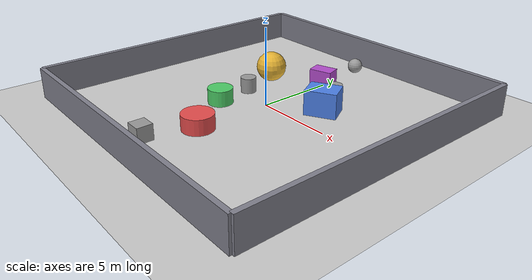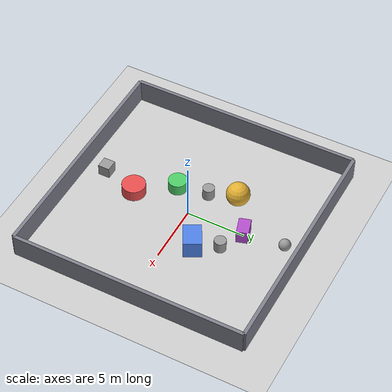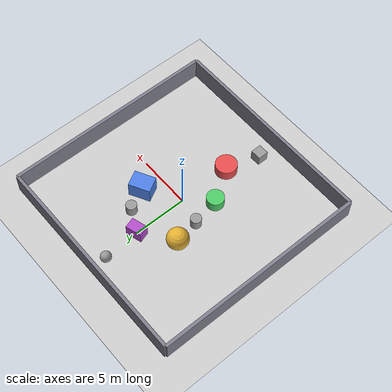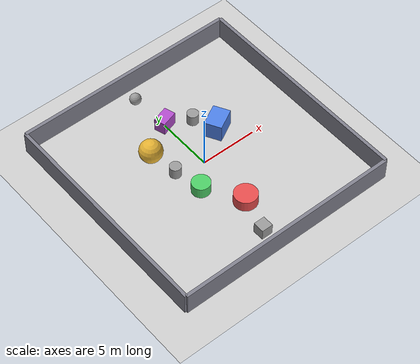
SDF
<sdf version="1.7">
 <world name="obstacle_world_small">
  <light name="sun" type="directional">
   <pose>0 0 20 0 -0 0</pose>
   <diffuse>0.9 0.9 0.9 1</diffuse>
   <specular>0.3 0.3 0.3 1</specular>
   <attenuation>
    <range>1500</range>
    <constant>0.9</constant>
    <linear>0.005</linear>
    <quadratic>0.001</quadratic>
   </attenuation>
   <direction>-0.5 -0.5 -1</direction>
   <spot><inner_angle>0</inner_angle><outer_angle>0</outer_angle><falloff>0</falloff></spot>
  </light>
  <physics type="ode">
   <max_step_size>0.001</max_step_size>
   <real_time_factor>1</real_time_factor>
   <real_time_update_rate>1000</real_time_update_rate>
   <ode>
    <solver>
     <type>quick</type>
     <iters>50</iters>
     <sor>1.3</sor>
     <use_dynamic_moi_rescaling>0</use_dynamic_moi_rescaling>
    </solver>
    <constraints>
     <cfm>0</cfm>
     <erp>0.2</erp>
     <contact_max_correcting_vel>100</contact_max_correcting_vel>
     <contact_surface_layer>0.001</contact_surface_layer>
    </constraints>
   </ode>
  </physics>
  <scene><ambient>0.5 0.5 0.5 1</ambient><background>0.8 0.8 0.85 1</background><shadows>1</shadows></scene>
  <model name="ground_plane">
   <static>1</static>
   <link name="link">
    <collision name="collision">
     <geometry><plane><normal>0 0 1</normal><size>20 20</size></plane></geometry>
     <surface><friction><ode><mu>100</mu><mu2>50</mu2></ode></friction></surface>
    </collision>
    <visual name="visual">
     <geometry><plane><normal>0 0 1</normal><size>20 20</size></plane></geometry>
     <material>
      <ambient>0.7 0.7 0.7 1</ambient>
      <diffuse>0.8 0.8 0.8 1</diffuse>
      <specular>0.1 0.1 0.1 1</specular>
     </material>
    </visual>
   </link>
  </model>
  <model name="wall_north">
   <static>1</static>
   <pose>0 10 1 0 -0 0</pose>
   <link name="link">
    <collision name="collision"><geometry><box><size>20 0.3 2</size></box></geometry></collision>
    <visual name="visual">
     <geometry><box><size>20 0.3 2</size></box></geometry>
     <material><ambient>0.4 0.4 0.45 1</ambient><diffuse>0.5 0.5 0.55 1</diffuse></material>
    </visual>
   </link>
  </model>
  <model name="wall_south">
   <static>1</static>
   <pose>0 -10 1 0 -0 0</pose>
   <link name="link">
    <collision name="collision"><geometry><box><size>20 0.3 2</size></box></geometry></collision>
    <visual name="visual">
     <geometry><box><size>20 0.3 2</size></box></geometry>
     <material><ambient>0.4 0.4 0.45 1</ambient><diffuse>0.5 0.5 0.55 1</diffuse></material>
    </visual>
   </link>
  </model>
  <model name="wall_east">
   <static>1</static>
   <pose>10 0 1 0 -0 0</pose>
   <link name="link">
    <collision name="collision"><geometry><box><size>0.3 20 2</size></box></geometry></collision>
    <visual name="visual">
     <geometry><box><size>0.3 20 2</size></box></geometry>
     <material><ambient>0.4 0.4 0.45 1</ambient><diffuse>0.5 0.5 0.55 1</diffuse></material>
    </visual>
   </link>
  </model>
  <model name="wall_west">
   <static>1</static>
   <pose>-10 0 1 0 -0 0</pose>
   <link name="link">
    <collision name="collision"><geometry><box><size>0.3 20 2</size></box></geometry></collision>
    <visual name="visual">
     <geometry><box><size>0.3 20 2</size></box></geometry>
     <material><ambient>0.4 0.4 0.45 1</ambient><diffuse>0.5 0.5 0.55 1</diffuse></material>
    </visual>
   </link>
  </model>
  <model name="cylinder_1">
   <static>1</static>
   <pose>0 -5 0.514657 0 -0 0</pose>
   <link name="link">
    <collision name="collision">
     <geometry><cylinder><radius>1</radius><length>1</length><height>1.6</height></cylinder></geometry>
    </collision>
    <visual name="visual">
     <geometry><cylinder><radius>1</radius><length>1</length><height>1.6</height></cylinder></geometry>
     <material><ambient>0.8 0.2 0.2 1</ambient><diffuse>0.9 0.3 0.3 1</diffuse></material>
    </visual>
   </link>
  </model>
  <model name="box_1">
   <static>1</static>
   <pose>3 2 0.8 0 -0 0.5</pose>
   <link name="link">
    <collision name="collision"><geometry><box><size>2 1.5 1.6</size></box></geometry></collision>
    <visual name="visual">
     <geometry><box><size>2 1.5 1.6</size></box></geometry>
     <material><ambient>0.2 0.4 0.8 1</ambient><diffuse>0.3 0.5 0.9 1</diffuse></material>
    </visual>
   </link>
  </model>
  <model name="sphere_1">
   <static>1</static>
   <pose>-3 3 1 0 -0 0</pose>
   <link name="link">
    <collision name="collision"><geometry><sphere><radius>1</radius></sphere></geometry></collision>
    <visual name="visual">
     <geometry><sphere><radius>1</radius></sphere></geometry>
     <material><ambient>0.8 0.6 0.1 1</ambient><diffuse>0.9 0.7 0.2 1</diffuse></material>
    </visual>
   </link>
  </model>
  <model name="cylinder_2">
   <static>1</static>
   <pose>-2 -2 0.6 0 -0 0</pose>
   <link name="link">
    <collision name="collision">
     <geometry><cylinder><radius>0.8</radius><length>1</length><height>1.2</height></cylinder></geometry>
    </collision>
    <visual name="visual">
     <geometry><cylinder><radius>0.8</radius><length>1</length><height>1.2</height></cylinder></geometry>
     <material><ambient>0.2 0.7 0.3 1</ambient><diffuse>0.3 0.8 0.4 1</diffuse></material>
    </visual>
   </link>
  </model>
  <model name="box_2">
   <static>1</static>
   <pose>0 5 0.6 0 -0 0.3</pose>
   <link name="link">
    <collision name="collision"><geometry><box><size>1.5 1 1.2</size></box></geometry></collision>
    <visual name="visual">
     <geometry><box><size>1.5 1 1.2</size></box></geometry>
     <material><ambient>0.6 0.2 0.7 1</ambient><diffuse>0.7 0.3 0.8 1</diffuse></material>
    </visual>
   </link>
  </model>
  <gravity>0 0 -9.8</gravity>
  <magnetic_field>6e-06 2.3e-05 -4.2e-05</magnetic_field>
  <atmosphere type="adiabatic"/>
  <spherical_coordinates>
   <surface_model>EARTH_WGS84</surface_model>
   <latitude_deg>0</latitude_deg>
   <longitude_deg>0</longitude_deg>
   <elevation>0</elevation>
   <heading_deg>0</heading_deg>
  </spherical_coordinates>
  <model name="unit_sphere">
   <pose>-0.290035 8.48172 0.5 0 -0 0</pose>
   <link name="link">
    <inertial>
     <mass>1</mass>
     <inertia><ixx>0.1</ixx><ixy>0</ixy><ixz>0</ixz><iyy>0.1</iyy><iyz>0</iyz><izz>0.1</izz></inertia>
    </inertial>
    <collision name="collision"><geometry><sphere><radius>0.5</radius></sphere></geometry></collision>
    <visual name="visual">
     <geometry><sphere><radius>0.5</radius></sphere></geometry>
     <material>
      <script><name>Gazebo/Grey</name><uri>file://media/materials/scripts/gazebo.material</uri></script>
     </material>
    </visual>
   </link>
  </model>
  <model name="unit_box">
   <pose>-0.922585 -8.09703 0.499995 0 1e-05 0</pose>
   <link name="link">
    <inertial>
     <mass>1</mass>
     <inertia>
      <ixx>0.166667</ixx>
      <ixy>0</ixy>
      <ixz>0</ixz>
      <iyy>0.166667</iyy>
      <iyz>0</iyz>
      <izz>0.166667</izz>
     </inertia>
    </inertial>
    <collision name="collision"><geometry><box><size>1 1 1</size></box></geometry></collision>
    <visual name="visual">
     <geometry><box><size>1 1 1</size></box></geometry>
     <material>
      <script><name>Gazebo/Grey</name><uri>file://media/materials/scripts/gazebo.material</uri></script>
     </material>
    </visual>
   </link>
  </model>
  <model name="unit_cylinder">
   <pose>-2.47685 0.580844 0.499993 -3e-06 -4e-06 -0</pose>
   <link name="link">
    <inertial>
     <mass>1</mass>
     <inertia><ixx>0.145833</ixx><ixy>0</ixy><ixz>0</ixz><iyy>0.145833</iyy><iyz>0</iyz><izz>0.125</izz></inertia>
    </inertial>
    <collision name="collision">
     <geometry><cylinder><radius>0.5</radius><length>1</length></cylinder></geometry>
    </collision>
    <visual name="visual">
     <geometry><cylinder><radius>0.5</radius><length>1</length></cylinder></geometry>
     <material>
      <script><name>Gazebo/Grey</name><uri>file://media/materials/scripts/gazebo.material</uri></script>
     </material>
    </visual>
   </link>
  </model>
  <model name="unit_cylinder_0">
   <pose>2.05385 3.96751 0.499997 3e-06 4e-06 -0</pose>
   <link name="link">
    <inertial>
     <mass>1</mass>
     <inertia><ixx>0.145833</ixx><ixy>0</ixy><ixz>0</ixz><iyy>0.145833</iyy><iyz>0</iyz><izz>0.125</izz></inertia>
    </inertial>
    <collision name="collision">
     <geometry><cylinder><radius>0.5</radius><length>1</length></cylinder></geometry>
    </collision>
    <visual name="visual">
     <geometry><cylinder><radius>0.5</radius><length>1</length></cylinder></geometry>
     <material>
      <script><name>Gazebo/Grey</name><uri>file://media/materials/scripts/gazebo.material</uri></script>
     </material>
    </visual>
   </link>
  </model>
 </world>
</sdf>
